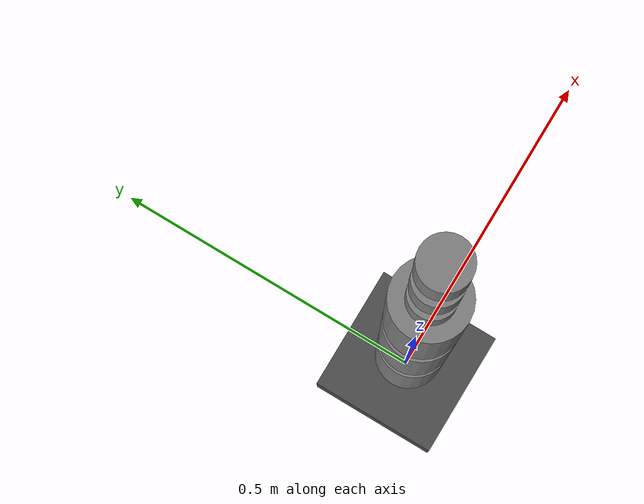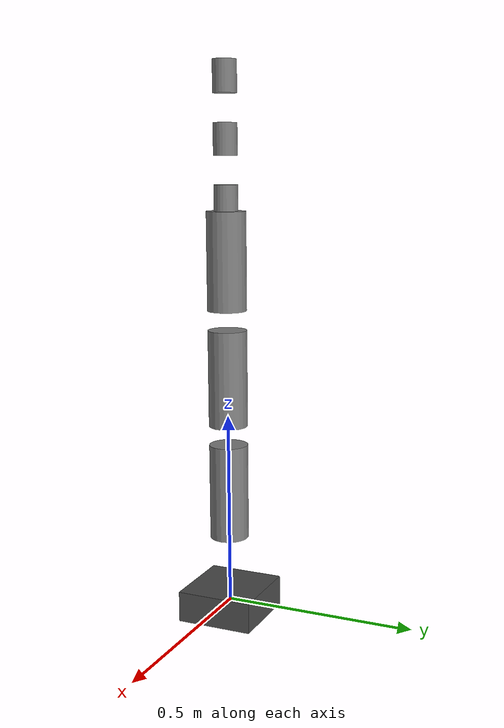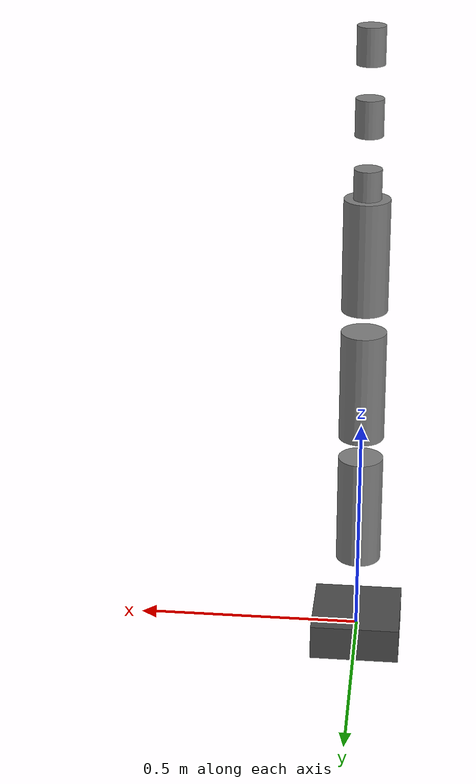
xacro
<?xml version="1.0"?>
<robot xmlns:xacro="http://www.ros.org/wiki/xacro" name="_______">
<!-- ── Materials ── -->
<material name="base_grey">
<color rgba="0.3 0.3 0.3 1"/>
</material>
<material name="link_grey">
<color rgba="0.5 0.5 0.5 1"/>
</material>
<material name="sensor_blue">
<color rgba="0.2 0.4 0.8 1"/>
</material>

<!-- Base Link                               -->
<link name="base_link">
<inertial>
<mass value="5.0"/>
<inertia ixx="0.5" ixy="0" ixz="0" iyy="0.5" iyz="0" izz="0.3"/>
</inertial>
<visual>
<geometry>
<box size="0.2 0.2 0.08"/>
</geometry>
<material name="base_grey"/>
</visual>
<collision>
<geometry>
<box size="0.2 0.2 0.08"/>
</geometry>
</collision>
</link>

<!-- Serial Chain (Manipulator Arm)          -->

<!-- Joint 1: joint_1_base (Motor: tmotor-ak80-9) -->
<link name="joint_1_base">
<inertial>
<mass value="1.5"/>
<inertia ixx="0.01" ixy="0" ixz="0" iyy="0.01" iyz="0" izz="0.005"/>
</inertial>
<visual>
<geometry>
<cylinder radius="0.05" length="0.25"/>
</geometry>
<material name="link_grey"/>
</visual>
<collision>
<geometry>
<cylinder radius="0.05" length="0.25"/>
</geometry>
</collision>
</link>
<joint name="joint_1_base_joint" type="revolute">
<parent link="base_link"/>
<child link="joint_1_base"/>
<origin xyz="0 0 0.3" rpy="0 0 0"/>
<axis xyz="0 0 1"/>
<limit effort="10"
velocity="6.283185307179585"
lower="-3.14"
upper="3.14"/>
</joint>

<!-- Joint 2: joint_2_shoulder (Motor: tmotor-ak80-9) -->
<link name="joint_2_shoulder">
<inertial>
<mass value="1.5"/>
<inertia ixx="0.01" ixy="0" ixz="0" iyy="0.01" iyz="0" izz="0.005"/>
</inertial>
<visual>
<geometry>
<cylinder radius="0.05" length="0.25"/>
</geometry>
<material name="link_grey"/>
</visual>
<collision>
<geometry>
<cylinder radius="0.05" length="0.25"/>
</geometry>
</collision>
</link>
<joint name="joint_2_shoulder_joint" type="revolute">
<parent link="joint_1_base"/>
<child link="joint_2_shoulder"/>
<origin xyz="0 0 0.3" rpy="0 0 0"/>
<axis xyz="0 1 0"/>
<limit effort="10"
velocity="6.283185307179585"
lower="-2"
upper="2"/>
</joint>

<!-- Joint 3: joint_3_elbow (Motor: tmotor-ak80-9) -->
<link name="joint_3_elbow">
<inertial>
<mass value="1.5"/>
<inertia ixx="0.01" ixy="0" ixz="0" iyy="0.01" iyz="0" izz="0.005"/>
</inertial>
<visual>
<geometry>
<cylinder radius="0.05" length="0.25"/>
</geometry>
<material name="link_grey"/>
</visual>
<collision>
<geometry>
<cylinder radius="0.05" length="0.25"/>
</geometry>
</collision>
</link>
<joint name="joint_3_elbow_joint" type="revolute">
<parent link="joint_2_shoulder"/>
<child link="joint_3_elbow"/>
<origin xyz="0 0 0.3" rpy="0 0 0"/>
<axis xyz="0 0 1"/>
<limit effort="10"
velocity="6.283185307179585"
lower="-2"
upper="2"/>
</joint>

<!-- Joint 4: joint_4_wrist_roll (Motor: dynamixel-xm430) -->
<link name="joint_4_wrist_roll">
<inertial>
<mass value="0.3"/>
<inertia ixx="0.01" ixy="0" ixz="0" iyy="0.01" iyz="0" izz="0.005"/>
</inertial>
<visual>
<geometry>
<cylinder radius="0.03" length="0.08"/>
</geometry>
<material name="link_grey"/>
</visual>
<collision>
<geometry>
<cylinder radius="0.03" length="0.08"/>
</geometry>
</collision>
</link>
<joint name="joint_4_wrist_roll_joint" type="revolute">
<parent link="joint_3_elbow"/>
<child link="joint_4_wrist_roll"/>
<origin xyz="0 0 0.15" rpy="0 0 0"/>
<axis xyz="0 1 0"/>
<limit effort="10"
velocity="6.283185307179585"
lower="-2"
upper="2"/>
</joint>

<!-- Joint 5: joint_5_wrist_pitch (Motor: dynamixel-xm430) -->
<link name="joint_5_wrist_pitch">
<inertial>
<mass value="0.3"/>
<inertia ixx="0.01" ixy="0" ixz="0" iyy="0.01" iyz="0" izz="0.005"/>
</inertial>
<visual>
<geometry>
<cylinder radius="0.03" length="0.08"/>
</geometry>
<material name="link_grey"/>
</visual>
<collision>
<geometry>
<cylinder radius="0.03" length="0.08"/>
</geometry>
</collision>
</link>
<joint name="joint_5_wrist_pitch_joint" type="revolute">
<parent link="joint_4_wrist_roll"/>
<child link="joint_5_wrist_pitch"/>
<origin xyz="0 0 0.15" rpy="0 0 0"/>
<axis xyz="0 0 1"/>
<limit effort="10"
velocity="6.283185307179585"
lower="-2"
upper="2"/>
</joint>

<!-- Joint 6: joint_6_wrist_yaw (Motor: dynamixel-xm430) -->
<link name="joint_6_wrist_yaw">
<inertial>
<mass value="0.3"/>
<inertia ixx="0.01" ixy="0" ixz="0" iyy="0.01" iyz="0" izz="0.005"/>
</inertial>
<visual>
<geometry>
<cylinder radius="0.03" length="0.08"/>
</geometry>
<material name="link_grey"/>
</visual>
<collision>
<geometry>
<cylinder radius="0.03" length="0.08"/>
</geometry>
</collision>
</link>
<joint name="joint_6_wrist_yaw_joint" type="revolute">
<parent link="joint_5_wrist_pitch"/>
<child link="joint_6_wrist_yaw"/>
<origin xyz="0 0 0.15" rpy="0 0 0"/>
<axis xyz="0 1 0"/>
<limit effort="10"
velocity="6.283185307179585"
lower="-2"
upper="2"/>
</joint>

<!-- ── Sensor Mounts ── -->

<link name="base_imu_mount">
<inertial>
<mass value="0.01"/>
<inertia ixx="1e-6" ixy="0" ixz="0" iyy="1e-6" iyz="0" izz="1e-6"/>
</inertial>
<visual>
<geometry><box size="0.03 0.03 0.03"/></geometry>
<material name="sensor_blue"/>
</visual>
</link>
<joint name="base_imu_joint" type="fixed">
<parent link="joint_1_base"/>
<child link="base_imu_mount"/>
<origin xyz="0 0 0.05"
rpy="0 0 0"/>
</joint>

<!-- ── @ai-extend: Add custom links and joints below ── -->
</robot>
